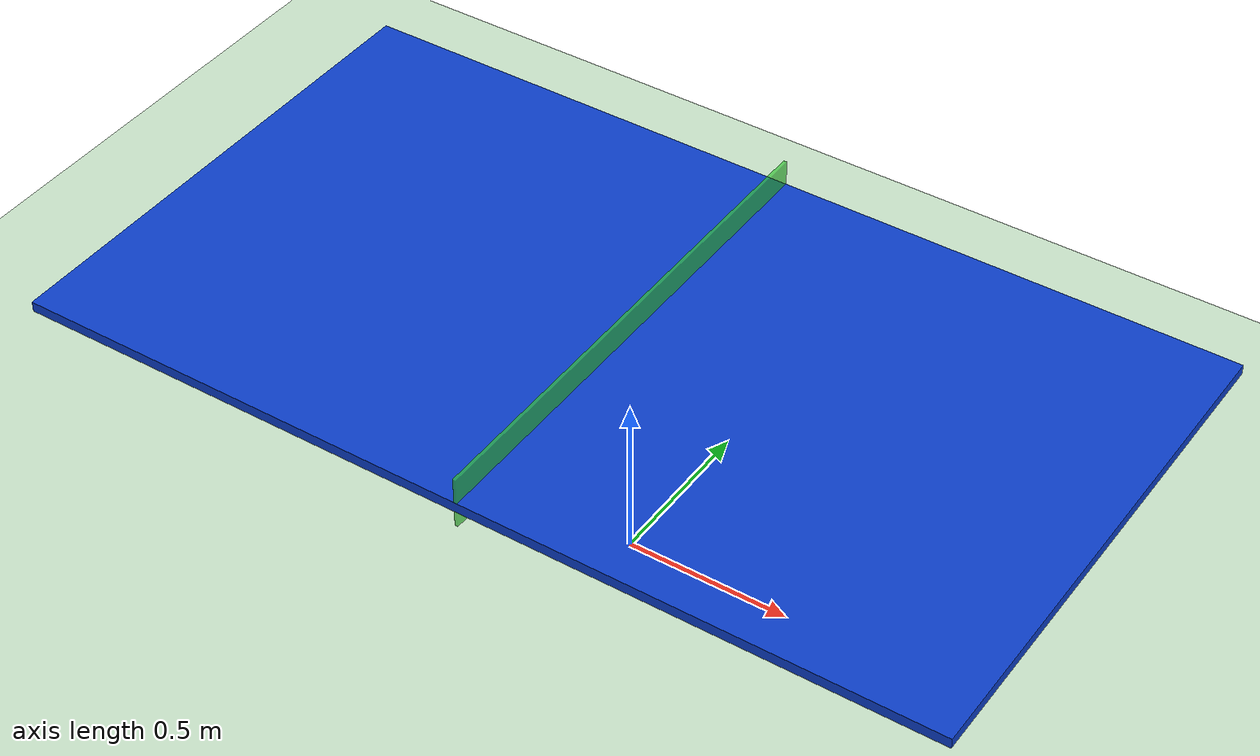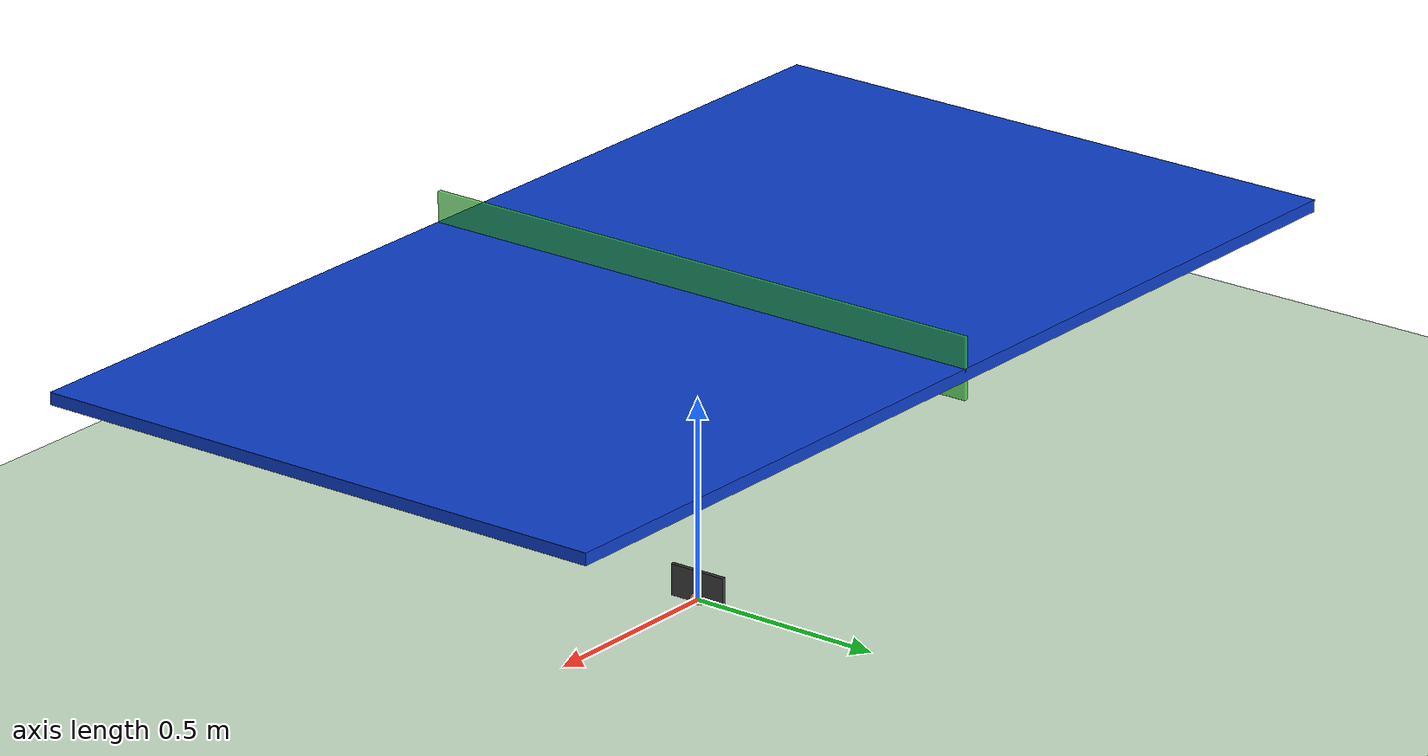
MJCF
<?xml version="1.0"?>
<mujoco model="table_tennis">

  <!--   COMPILATION & GLOBAL OPTIONS   -->
  <compiler angle="degree" coordinate="local" inertiafromgeom="true"/>
  <option timestep="0.0005" integrator="Euler"
        solver="Newton"
        iterations="20"
        tolerance="1e-8"
        gravity="0 0 -9.81"
        density="1.225" viscosity="1.8e-5" wind="0 0 0"/>
  <size njmax="500" nconmax="200"/>

  <visual>
    <global offwidth="1280" offheight="720"/>
  </visual>

  <!--   DEFAULTS (root then specialised)   -->
  <default>
    <!-- Ball-specific defaults -->
    <default class="ball">
      <joint type="free" damping="0.002"/>
      <geom type="sphere" size="0.02" mass="0.0027"
            rgba="1 0.6 0.3 1"
            solref="-1e6 -17"
            solimp="0.98 0.99 0.001 0.5 2"
            friction="0.1 0.1 0.005"
            fluidshape="ellipsoid"
            fluidcoef="0.235 0.25 0 1 1"/>
    </default>

    <!-- Paddle-specific defaults -->
    <default class="paddle">
      <geom type="box" size="0.075 0.075 0.005" density="700"
            rgba="0.25 0.25 0.25 1"
            solref="-2.68072e5 -103"
            solimp="1.0 0.95 0.001 1.0 6"
            friction="1.5 1.5 0.005"/>
    </default>

  </default>

  <!--   WORLD GEOMETRY   -->
  <worldbody>

    <body name="light_base" pos="0 0 3">
      <light name="top_light"
            mode="track"
            directional="false"
            diffuse="1 1 1"
            specular="0.3 0.3 0.3"
            ambient="0.3 0.3 0.3"
            attenuation="1 0 0"
            castshadow="true"/>
   </body>
    <geom name="ground" type="plane" pos="0 0 0" size="0 0 0.1" rgba="0.8 0.9 0.8 1"/>

    <body name="table" pos="0 0 0.745">
      <geom name="table_top" type="box" size="1.37 0.7625 0.015" rgba="0.05 0.25 0.8 1"
            friction="0.4 0.4 0.005"/>
    </body>

    <body name="net" pos="0 0 0.76">
      <geom name="net_geom" type="box" size="0.005 0.7625 0.07625" rgba="0.2 0.8 0.2 0.7"
            contype="1" conaffinity="1"/>
    </body>

    <!-- Ball -->
    <body name="ball" pos="0 0 0">
      <joint class="ball"/>
      <geom name="ball_geom" class="ball"/>
    </body>

    <!-- Paddle (gravity compensated) -->
    <body name="paddle_base" pos="0 0 0" gravcomp="1">
      <!-- Joints apply here in world-aligned frame -->
      <joint name="paddle_x" type="slide" axis="1 0 0" limited="true" range="-10 10" damping="1"/>
      <joint name="paddle_y" type="slide" axis="0 1 0" limited="true" range="-10 10" damping="1"/>
      <joint name="paddle_z" type="slide" axis="0 0 1" limited="true" range="-10 10" damping="1"/>

      <!-- Nested body to hold rotated geometry -->
      <body name="paddle" quat="0.7071 0.0 0.7071 0.0" gravcomp="1">
        <geom name="paddle_face" class="paddle"/>
      </body>
    </body>

    <camera
      name="fixed_cam"
      mode="fixed"
      pos="-4.991 0.088 1.555"
      xyaxes="-0.018 -1.000 0.000 0.297 -0.005 0.955"/>
  </worldbody>

  <!--   CONTACT OVERRIDES   -->
  <contact>
    <pair geom1="ball_geom" geom2="table_top"
          solref="-1e6 -17" solimp="0.98 0.99 0.001 0.5 2"
          friction="0.1 0.1 0.005"/>
    <pair geom1="ball_geom" geom2="paddle_face"
          solref="-2.68072e5 -103" solimp="1.0 0.95 0.001 1.0 6"
          friction="1.5 1.5 0.005"/>
  </contact>

  <actuator>
    <velocity name="motor_paddle_x" joint="paddle_x" ctrlrange="-10 10" kv="1"/>
    <velocity name="motor_paddle_y" joint="paddle_y" ctrlrange="-10 10" kv="1"/>
    <velocity name="motor_paddle_z" joint="paddle_z" ctrlrange="-10 10" kv="1"/>
  </actuator>

  <keyframe>
    <key qpos="3.5 0 1.3 1 0 0 0   -1.5 0 1"
            qvel="-10 0 0 0 0 0   0 0 0"
            name="serve"/>
    </keyframe>

</mujoco>
